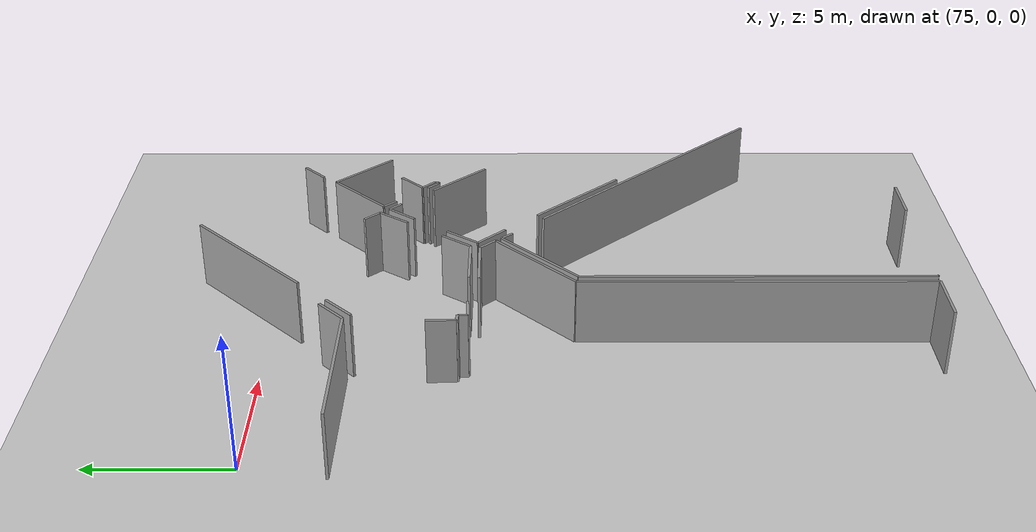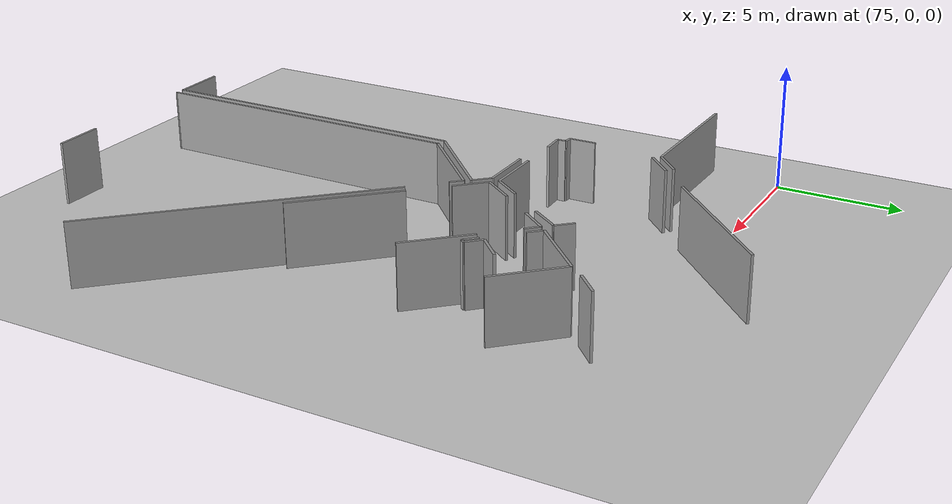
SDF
<sdf version="1.6">
 <world name="default">
  <model name="ground_plane">
   <static>1</static>
   <link name="link">
    <collision name="collision">
     <geometry><plane><normal>0 0 1</normal><size>100 100</size></plane></geometry>
     <surface><friction><ode><mu>100</mu><mu2>50</mu2></ode></friction></surface>
    </collision>
    <visual name="visual">
     <cast_shadows>0</cast_shadows>
     <geometry><plane><normal>0 0 1</normal><size>100 100</size></plane></geometry>
     <material>
      <script><uri>file://media/materials/scripts/gazebo.material</uri><name>Gazebo/Grey</name></script>
     </material>
    </visual>
   </link>
  </model>
  <model name="0510035343_A_40_1_102">
   <static>1</static>
   <link name="Wall_567">
    <collision name="Wall_567_Collision">
     <geometry><box><size>0.35316893586 0.1 2.5</size></box></geometry>
     <pose>0.17658446793 0 1.25 0 0 0</pose>
    </collision>
    <visual name="Wall_567_Visual">
     <pose>0.17658446793 0 1.25 0 0 0</pose>
     <geometry><box><size>0.35316893586 0.1 2.5</size></box></geometry>
     <material>
      <script><uri>file://media/materials/scripts/gazebo.material</uri><name>Gazebo/Grey</name></script>
      <ambient>1 1 1 1</ambient>
     </material>
    </visual>
    <pose>197.060649338 -31.5341013679 0 0 0 1.57079632679</pose>
   </link>
   <link name="Wall_568">
    <collision name="Wall_568_Collision">
     <geometry><box><size>0.316388085102 0.1 2.5</size></box></geometry>
     <pose>0.158194042551 0 1.25 0 0 0</pose>
    </collision>
    <visual name="Wall_568_Visual">
     <pose>0.158194042551 0 1.25 0 0 0</pose>
     <geometry><box><size>0.316388085102 0.1 2.5</size></box></geometry>
     <material>
      <script><uri>file://media/materials/scripts/gazebo.material</uri><name>Gazebo/Grey</name></script>
      <ambient>1 1 1 1</ambient>
     </material>
    </visual>
    <pose>197.060649338 -31.180932432 0 0 0 3.05078745979</pose>
   </link>
   <link name="Wall_569">
    <collision name="Wall_569_Collision">
     <geometry><box><size>1.05967791327 0.1 2.5</size></box></geometry>
     <pose>0.529838956633 0 1.25 0 0 0</pose>
    </collision>
    <visual name="Wall_569_Visual">
     <pose>0.529838956633 0 1.25 0 0 0</pose>
     <geometry><box><size>1.05967791327 0.1 2.5</size></box></geometry>
     <material>
      <script><uri>file://media/materials/scripts/gazebo.material</uri><name>Gazebo/Grey</name></script>
      <ambient>1 1 1 1</ambient>
     </material>
    </visual>
    <pose>196.745564759 -31.1522422165 0 0 0 1.58876707353</pose>
   </link>
   <link name="Wall_572">
    <collision name="Wall_572_Collision">
     <geometry><box><size>1.38983380276 0.1 2.5</size></box></geometry>
     <pose>0.694916901379 0 1.25 0 0 0</pose>
    </collision>
    <visual name="Wall_572_Visual">
     <pose>0.694916901379 0 1.25 0 0 0</pose>
     <geometry><box><size>1.38983380276 0.1 2.5</size></box></geometry>
     <material>
      <script><uri>file://media/materials/scripts/gazebo.material</uri><name>Gazebo/Grey</name></script>
      <ambient>1 1 1 1</ambient>
     </material>
    </visual>
    <pose>197.075121394 -27.5751055254 0 0 0 0.766020744107</pose>
   </link>
   <link name="Wall_573">
    <collision name="Wall_573_Collision">
     <geometry><box><size>5.97496874762 0.1 2.5</size></box></geometry>
     <pose>2.98748437381 0 1.25 0 0 0</pose>
    </collision>
    <visual name="Wall_573_Visual">
     <pose>2.98748437381 0 1.25 0 0 0</pose>
     <geometry><box><size>5.97496874762 0.1 2.5</size></box></geometry>
     <material>
      <script><uri>file://media/materials/scripts/gazebo.material</uri><name>Gazebo/Grey</name></script>
      <ambient>1 1 1 1</ambient>
     </material>
    </visual>
    <pose>199.208353169 -25.5236281697 0 0 0 0.768210290108</pose>
   </link>
   <link name="Wall_588">
    <collision name="Wall_588_Collision">
     <geometry><box><size>0.770288962461 0.1 2.5</size></box></geometry>
     <pose>0.385144481231 0 1.25 0 0 0</pose>
    </collision>
    <visual name="Wall_588_Visual">
     <pose>0.385144481231 0 1.25 0 0 0</pose>
     <geometry><box><size>0.770288962461 0.1 2.5</size></box></geometry>
     <material>
      <script><uri>file://media/materials/scripts/gazebo.material</uri><name>Gazebo/Grey</name></script>
      <ambient>1 1 1 1</ambient>
     </material>
    </visual>
    <pose>203.94198483 -27.4583134977 0 0 0 -0.819899392911</pose>
   </link>
   <link name="Wall_589">
    <collision name="Wall_589_Collision">
     <geometry><box><size>1.33744802744 0.1 2.5</size></box></geometry>
     <pose>0.668724013718 0 1.25 0 0 0</pose>
    </collision>
    <visual name="Wall_589_Visual">
     <pose>0.668724013718 0 1.25 0 0 0</pose>
     <geometry><box><size>1.33744802744 0.1 2.5</size></box></geometry>
     <material>
      <script><uri>file://media/materials/scripts/gazebo.material</uri><name>Gazebo/Grey</name></script>
      <ambient>1 1 1 1</ambient>
     </material>
    </visual>
    <pose>204.467548954 -28.0214541877 0 0 0 -2.20351454487</pose>
   </link>
   <link name="Wall_590">
    <collision name="Wall_590_Collision">
     <geometry><box><size>1.33063933046 0.1 2.5</size></box></geometry>
     <pose>0.665319665229 0 1.25 0 0 0</pose>
    </collision>
    <visual name="Wall_590_Visual">
     <pose>0.665319665229 0 1.25 0 0 0</pose>
     <geometry><box><size>1.33063933046 0.1 2.5</size></box></geometry>
     <material>
      <script><uri>file://media/materials/scripts/gazebo.material</uri><name>Gazebo/Grey</name></script>
      <ambient>1 1 1 1</ambient>
     </material>
    </visual>
    <pose>202.644323844 -30.4362563077 0 0 0 -2.2084586987</pose>
   </link>
   <link name="Wall_591">
    <collision name="Wall_591_Collision">
     <geometry><box><size>2.27187932034 0.1 2.5</size></box></geometry>
     <pose>1.13593966017 0 1.25 0 0 0</pose>
    </collision>
    <visual name="Wall_591_Visual">
     <pose>1.13593966017 0 1.25 0 0 0</pose>
     <geometry><box><size>2.27187932034 0.1 2.5</size></box></geometry>
     <material>
      <script><uri>file://media/materials/scripts/gazebo.material</uri><name>Gazebo/Grey</name></script>
      <ambient>1 1 1 1</ambient>
     </material>
    </visual>
    <pose>201.852169221 -31.5054111524 0 0 0 3.13734592007</pose>
   </link>
   <link name="Wall_592">
    <collision name="Wall_592_Collision">
     <geometry><box><size>0.882612855713 0.1 2.5</size></box></geometry>
     <pose>0.441306427857 0 1.25 0 0 0</pose>
    </collision>
    <visual name="Wall_592_Visual">
     <pose>0.441306427857 0 1.25 0 0 0</pose>
     <geometry><box><size>0.882612855713 0.1 2.5</size></box></geometry>
     <material>
      <script><uri>file://media/materials/scripts/gazebo.material</uri><name>Gazebo/Grey</name></script>
      <ambient>1 1 1 1</ambient>
     </material>
    </visual>
    <pose>197.942429147 -31.4957631153 0 0 0 -3.0981417582</pose>
   </link>
   <link name="Wall_599">
    <collision name="Wall_599_Collision">
     <geometry><box><size>2.16547653052 0.1 2.5</size></box></geometry>
     <pose>1.08273826526 0 1.25 0 0 0</pose>
    </collision>
    <visual name="Wall_599_Visual">
     <pose>1.08273826526 0 1.25 0 0 0</pose>
     <geometry><box><size>2.16547653052 0.1 2.5</size></box></geometry>
     <material>
      <script><uri>file://media/materials/scripts/gazebo.material</uri><name>Gazebo/Grey</name></script>
      <ambient>1 1 1 1</ambient>
     </material>
    </visual>
    <pose>199.567361706 -31.8489320512 0 0 0 0.0</pose>
   </link>
   <link name="Wall_600">
    <collision name="Wall_600_Collision">
     <geometry><box><size>0.778689498855 0.1 2.5</size></box></geometry>
     <pose>0.389344749427 0 1.25 0 0 0</pose>
    </collision>
    <visual name="Wall_600_Visual">
     <pose>0.389344749427 0 1.25 0 0 0</pose>
     <geometry><box><size>0.778689498855 0.1 2.5</size></box></geometry>
     <material>
      <script><uri>file://media/materials/scripts/gazebo.material</uri><name>Gazebo/Grey</name></script>
      <ambient>1 1 1 1</ambient>
     </material>
    </visual>
    <pose>201.732838237 -31.8489320512 0 0 0 -0.810300763502</pose>
   </link>
   <link name="Wall_601">
    <collision name="Wall_601_Collision">
     <geometry><box><size>4.13255327687 0.1 2.5</size></box></geometry>
     <pose>2.06627663843 0 1.25 0 0 0</pose>
    </collision>
    <visual name="Wall_601_Visual">
     <pose>2.06627663843 0 1.25 0 0 0</pose>
     <geometry><box><size>4.13255327687 0.1 2.5</size></box></geometry>
     <material>
      <script><uri>file://media/materials/scripts/gazebo.material</uri><name>Gazebo/Grey</name></script>
      <ambient>1 1 1 1</ambient>
     </material>
    </visual>
    <pose>202.269573773 -32.413088324 0 0 0 -2.37609279345</pose>
   </link>
   <link name="Wall_602">
    <collision name="Wall_602_Collision">
     <geometry><box><size>12.7734932876 0.1 2.5</size></box></geometry>
     <pose>6.38674664382 0 1.25 0 0 0</pose>
    </collision>
    <visual name="Wall_602_Visual">
     <pose>6.38674664382 0 1.25 0 0 0</pose>
     <geometry><box><size>12.7734932876 0.1 2.5</size></box></geometry>
     <material>
      <script><uri>file://media/materials/scripts/gazebo.material</uri><name>Gazebo/Grey</name></script>
      <ambient>1 1 1 1</ambient>
     </material>
    </visual>
    <pose>199.289853693 -35.2765241677 0 0 0 -1.57079632679</pose>
   </link>
   <link name="Wall_603">
    <collision name="Wall_603_Collision">
     <geometry><box><size>2.10809609953 0.1 2.5</size></box></geometry>
     <pose>1.05404804976 0 1.25 0 0 0</pose>
    </collision>
    <visual name="Wall_603_Visual">
     <pose>1.05404804976 0 1.25 0 0 0</pose>
     <geometry><box><size>2.10809609953 0.1 2.5</size></box></geometry>
     <material>
      <script><uri>file://media/materials/scripts/gazebo.material</uri><name>Gazebo/Grey</name></script>
      <ambient>1 1 1 1</ambient>
     </material>
    </visual>
    <pose>199.289853693 -48.0500174553 0 0 0 3.14159265359</pose>
   </link>
   <link name="Wall_611">
    <collision name="Wall_611_Collision">
     <geometry><box><size>1.29021769721 0.1 2.5</size></box></geometry>
     <pose>0.645108848606 0 1.25 0 0 0</pose>
    </collision>
    <visual name="Wall_611_Visual">
     <pose>0.645108848606 0 1.25 0 0 0</pose>
     <geometry><box><size>1.29021769721 0.1 2.5</size></box></geometry>
     <material>
      <script><uri>file://media/materials/scripts/gazebo.material</uri><name>Gazebo/Grey</name></script>
      <ambient>1 1 1 1</ambient>
     </material>
    </visual>
    <pose>197.81141896 -26.4203878257 0 0 0 -2.38778637048</pose>
   </link>
   <link name="Wall_612">
    <collision name="Wall_612_Collision">
     <geometry><box><size>5.55970458364 0.1 2.5</size></box></geometry>
     <pose>2.77985229182 0 1.25 0 0 0</pose>
    </collision>
    <visual name="Wall_612_Visual">
     <pose>2.77985229182 0 1.25 0 0 0</pose>
     <geometry><box><size>5.55970458364 0.1 2.5</size></box></geometry>
     <material>
      <script><uri>file://media/materials/scripts/gazebo.material</uri><name>Gazebo/Grey</name></script>
      <ambient>1 1 1 1</ambient>
     </material>
    </visual>
    <pose>196.870735345 -27.3034371132 0 0 0 3.12953624107</pose>
   </link>
   <link name="Wall_652">
    <collision name="Wall_652_Collision">
     <geometry><box><size>1.17896921696 0.1 2.5</size></box></geometry>
     <pose>0.589484608479 0 1.25 0 0 0</pose>
    </collision>
    <visual name="Wall_652_Visual">
     <pose>0.589484608479 0 1.25 0 0 0</pose>
     <geometry><box><size>1.17896921696 0.1 2.5</size></box></geometry>
     <material>
      <script><uri>file://media/materials/scripts/gazebo.material</uri><name>Gazebo/Grey</name></script>
      <ambient>1 1 1 1</ambient>
     </material>
    </visual>
    <pose>207.478752103 -25.5680599194 0 0 0 0.755547191539</pose>
   </link>
   <link name="Wall_662">
    <collision name="Wall_662_Collision">
     <geometry><box><size>4.34673030655 0.1 2.5</size></box></geometry>
     <pose>2.17336515327 0 1.25 0 0 0</pose>
    </collision>
    <visual name="Wall_662_Visual">
     <pose>2.17336515327 0 1.25 0 0 0</pose>
     <geometry><box><size>4.34673030655 0.1 2.5</size></box></geometry>
     <material>
      <script><uri>file://media/materials/scripts/gazebo.material</uri><name>Gazebo/Grey</name></script>
      <ambient>1 1 1 1</ambient>
     </material>
    </visual>
    <pose>207.237551176 -37.1330096163 0 0 0 2.33124511527</pose>
   </link>
   <link name="Wall_663">
    <collision name="Wall_663_Collision">
     <geometry><box><size>1.397198509 0.1 2.5</size></box></geometry>
     <pose>0.698599254498 0 1.25 0 0 0</pose>
    </collision>
    <visual name="Wall_663_Visual">
     <pose>0.698599254498 0 1.25 0 0 0</pose>
     <geometry><box><size>1.397198509 0.1 2.5</size></box></geometry>
     <material>
      <script><uri>file://media/materials/scripts/gazebo.material</uri><name>Gazebo/Grey</name></script>
      <ambient>1 1 1 1</ambient>
     </material>
    </visual>
    <pose>203.083817322 -32.7662572598 0 0 0 2.34514379638</pose>
   </link>
   <link name="Wall_664">
    <collision name="Wall_664_Collision">
     <geometry><box><size>1.45127431016 0.1 2.5</size></box></geometry>
     <pose>0.725637155081 0 1.25 0 0 0</pose>
    </collision>
    <visual name="Wall_664_Visual">
     <pose>0.725637155081 0 1.25 0 0 0</pose>
     <geometry><box><size>1.45127431016 0.1 2.5</size></box></geometry>
     <material>
      <script><uri>file://media/materials/scripts/gazebo.material</uri><name>Gazebo/Grey</name></script>
      <ambient>1 1 1 1</ambient>
     </material>
    </visual>
    <pose>202.106826621 -31.7674315275 0 0 0 0.930269317</pose>
   </link>
   <link name="Wall_665">
    <collision name="Wall_665_Collision">
     <geometry><box><size>1.26469583047 0.1 2.5</size></box></geometry>
     <pose>0.632347915236 0 1.25 0 0 0</pose>
    </collision>
    <visual name="Wall_665_Visual">
     <pose>0.632347915236 0 1.25 0 0 0</pose>
     <geometry><box><size>1.26469583047 0.1 2.5</size></box></geometry>
     <material>
      <script><uri>file://media/materials/scripts/gazebo.material</uri><name>Gazebo/Grey</name></script>
      <ambient>1 1 1 1</ambient>
     </material>
    </visual>
    <pose>203.962296487 -29.3414579961 0 0 0 0.896494324816</pose>
   </link>
   <link name="Wall_666">
    <collision name="Wall_666_Collision">
     <geometry><box><size>0.60627770918 0.1 2.5</size></box></geometry>
     <pose>0.30313885459 0 1.25 0 0 0</pose>
    </collision>
    <visual name="Wall_666_Visual">
     <pose>0.30313885459 0 1.25 0 0 0</pose>
     <geometry><box><size>0.60627770918 0.1 2.5</size></box></geometry>
     <material>
      <script><uri>file://media/materials/scripts/gazebo.material</uri><name>Gazebo/Grey</name></script>
      <ambient>1 1 1 1</ambient>
     </material>
    </visual>
    <pose>204.751912152 -28.3535497794 0 0 0 -0.784509801179</pose>
   </link>
   <link name="Wall_667">
    <collision name="Wall_667_Collision">
     <geometry><box><size>2.73534332112 0.1 2.5</size></box></geometry>
     <pose>1.36767166056 0 1.25 0 0 0</pose>
    </collision>
    <visual name="Wall_667_Visual">
     <pose>1.36767166056 0 1.25 0 0 0</pose>
     <geometry><box><size>2.73534332112 0.1 2.5</size></box></geometry>
     <material>
      <script><uri>file://media/materials/scripts/gazebo.material</uri><name>Gazebo/Grey</name></script>
      <ambient>1 1 1 1</ambient>
     </material>
    </visual>
    <pose>206.313370783 -29.9475070615 0 0 0 -0.811063854557</pose>
   </link>
   <link name="Wall_679">
    <collision name="Wall_679_Collision">
     <geometry><box><size>0.600041250592 0.1 2.5</size></box></geometry>
     <pose>0.300020625296 0 1.25 0 0 0</pose>
    </collision>
    <visual name="Wall_679_Visual">
     <pose>0.300020625296 0 1.25 0 0 0</pose>
     <geometry><box><size>0.600041250592 0.1 2.5</size></box></geometry>
     <material>
      <script><uri>file://media/materials/scripts/gazebo.material</uri><name>Gazebo/Grey</name></script>
      <ambient>1 1 1 1</ambient>
     </material>
    </visual>
    <pose>206.958265892 -30.1595099813 0 0 0 2.34362782679</pose>
   </link>
   <link name="Wall_680">
    <collision name="Wall_680_Collision">
     <geometry><box><size>0.616381193804 0.1 2.5</size></box></geometry>
     <pose>0.308190596902 0 1.25 0 0 0</pose>
    </collision>
    <visual name="Wall_680_Visual">
     <pose>0.308190596902 0 1.25 0 0 0</pose>
     <geometry><box><size>0.616381193804 0.1 2.5</size></box></geometry>
     <material>
      <script><uri>file://media/materials/scripts/gazebo.material</uri><name>Gazebo/Grey</name></script>
      <ambient>1 1 1 1</ambient>
     </material>
    </visual>
    <pose>205.399346219 -28.5703767178 0 0 0 2.31249055837</pose>
   </link>
   <link name="Wall_681">
    <collision name="Wall_681_Collision">
     <geometry><box><size>2.88731183079 0.1 2.5</size></box></geometry>
     <pose>1.4436559154 0 1.25 0 0 0</pose>
    </collision>
    <visual name="Wall_681_Visual">
     <pose>1.4436559154 0 1.25 0 0 0</pose>
     <geometry><box><size>2.88731183079 0.1 2.5</size></box></geometry>
     <material>
      <script><uri>file://media/materials/scripts/gazebo.material</uri><name>Gazebo/Grey</name></script>
      <ambient>1 1 1 1</ambient>
     </material>
    </visual>
    <pose>204.98295725 -28.1159033927 0 0 0 0.771780449166</pose>
   </link>
   <link name="Wall_682">
    <collision name="Wall_682_Collision">
     <geometry><box><size>2.85352689656 0.1 2.5</size></box></geometry>
     <pose>1.42676344828 0 1.25 0 0 0</pose>
    </collision>
    <visual name="Wall_682_Visual">
     <pose>1.42676344828 0 1.25 0 0 0</pose>
     <geometry><box><size>2.85352689656 0.1 2.5</size></box></geometry>
     <material>
      <script><uri>file://media/materials/scripts/gazebo.material</uri><name>Gazebo/Grey</name></script>
      <ambient>1 1 1 1</ambient>
     </material>
    </visual>
    <pose>207.052207306 -26.1022564981 0 0 0 -0.808679041371</pose>
   </link>
   <link name="Wall_685">
    <collision name="Wall_685_Collision">
     <geometry><box><size>1.20941740149 0.1 2.5</size></box></geometry>
     <pose>0.604708700746 0 1.25 0 0 0</pose>
    </collision>
    <visual name="Wall_685_Visual">
     <pose>0.604708700746 0 1.25 0 0 0</pose>
     <geometry><box><size>1.20941740149 0.1 2.5</size></box></geometry>
     <material>
      <script><uri>file://media/materials/scripts/gazebo.material</uri><name>Gazebo/Grey</name></script>
      <ambient>1 1 1 1</ambient>
     </material>
    </visual>
    <pose>207.435589831 -28.6714272113 0 0 0 -2.36866415263</pose>
   </link>
   <link name="Wall_686">
    <collision name="Wall_686_Collision">
     <geometry><box><size>0.698932471226 0.1 2.5</size></box></geometry>
     <pose>0.349466235613 0 1.25 0 0 0</pose>
    </collision>
    <visual name="Wall_686_Visual">
     <pose>0.349466235613 0 1.25 0 0 0</pose>
     <geometry><box><size>0.698932471226 0.1 2.5</size></box></geometry>
     <material>
      <script><uri>file://media/materials/scripts/gazebo.material</uri><name>Gazebo/Grey</name></script>
      <ambient>1 1 1 1</ambient>
     </material>
    </visual>
    <pose>206.569805452 -29.5158843505 0 0 0 -0.778462749295</pose>
   </link>
   <link name="Wall_687">
    <collision name="Wall_687_Collision">
     <geometry><box><size>0.187832041122 0.1 2.5</size></box></geometry>
     <pose>0.0939160205612 0 1.25 0 0 0</pose>
    </collision>
    <visual name="Wall_687_Visual">
     <pose>0.0939160205612 0 1.25 0 0 0</pose>
     <geometry><box><size>0.187832041122 0.1 2.5</size></box></geometry>
     <material>
      <script><uri>file://media/materials/scripts/gazebo.material</uri><name>Gazebo/Grey</name></script>
      <ambient>1 1 1 1</ambient>
     </material>
    </visual>
    <pose>207.067441049 -30.0066647624 0 0 0 -2.19104581278</pose>
   </link>
   <link name="Wall_688">
    <collision name="Wall_688_Collision">
     <geometry><box><size>12.7112888381 0.1 2.5</size></box></geometry>
     <pose>6.35564441905 0 1.25 0 0 0</pose>
    </collision>
    <visual name="Wall_688_Visual">
     <pose>6.35564441905 0 1.25 0 0 0</pose>
     <geometry><box><size>12.7112888381 0.1 2.5</size></box></geometry>
     <material>
      <script><uri>file://media/materials/scripts/gazebo.material</uri><name>Gazebo/Grey</name></script>
      <ambient>1 1 1 1</ambient>
     </material>
    </visual>
    <pose>199.64708496 -48.0708369037 0 0 0 1.57079632679</pose>
   </link>
   <link name="Wall_689">
    <collision name="Wall_689_Collision">
     <geometry><box><size>3.90984138227 0.1 2.5</size></box></geometry>
     <pose>1.95492069114 0 1.25 0 0 0</pose>
    </collision>
    <visual name="Wall_689_Visual">
     <pose>1.95492069114 0 1.25 0 0 0</pose>
     <geometry><box><size>3.90984138227 0.1 2.5</size></box></geometry>
     <material>
      <script><uri>file://media/materials/scripts/gazebo.material</uri><name>Gazebo/Grey</name></script>
      <ambient>1 1 1 1</ambient>
     </material>
    </visual>
    <pose>199.64708496 -35.3595480656 0 0 0 0.771714226972</pose>
   </link>
   <link name="Wall_690">
    <collision name="Wall_690_Collision">
     <geometry><box><size>0.536732473268 0.1 2.5</size></box></geometry>
     <pose>0.268366236634 0 1.25 0 0 0</pose>
    </collision>
    <visual name="Wall_690_Visual">
     <pose>0.268366236634 0 1.25 0 0 0</pose>
     <geometry><box><size>0.536732473268 0.1 2.5</size></box></geometry>
     <material>
      <script><uri>file://media/materials/scripts/gazebo.material</uri><name>Gazebo/Grey</name></script>
      <ambient>1 1 1 1</ambient>
     </material>
    </visual>
    <pose>202.449331937 -32.6329620109 0 0 0 -0.852010826995</pose>
   </link>
   <link name="Wall_691">
    <collision name="Wall_691_Collision">
     <geometry><box><size>11.7592122355 0.1 2.5</size></box></geometry>
     <pose>5.87960611777 0 1.25 0 0 0</pose>
    </collision>
    <visual name="Wall_691_Visual">
     <pose>5.87960611777 0 1.25 0 0 0</pose>
     <geometry><box><size>11.7592122355 0.1 2.5</size></box></geometry>
     <material>
      <script><uri>file://media/materials/scripts/gazebo.material</uri><name>Gazebo/Grey</name></script>
      <ambient>1 1 1 1</ambient>
     </material>
    </visual>
    <pose>203.962296487 -34.1875654575 0 0 0 -0.807140506626</pose>
   </link>
   <link name="Wall_694">
    <collision name="Wall_694_Collision">
     <geometry><box><size>1.90421784252 0.1 2.5</size></box></geometry>
     <pose>0.952108921261 0 1.25 0 0 0</pose>
    </collision>
    <visual name="Wall_694_Visual">
     <pose>0.952108921261 0 1.25 0 0 0</pose>
     <geometry><box><size>1.90421784252 0.1 2.5</size></box></geometry>
     <material>
      <script><uri>file://media/materials/scripts/gazebo.material</uri><name>Gazebo/Grey</name></script>
      <ambient>1 1 1 1</ambient>
     </material>
    </visual>
    <pose>206.541876924 -48.0299596941 0 0 0 3.14159265359</pose>
   </link>
   <link name="Wall_695">
    <collision name="Wall_695_Collision">
     <geometry><box><size>0.063813241403 0.1 2.5</size></box></geometry>
     <pose>0.0319066207015 0 1.25 0 0 0</pose>
    </collision>
    <visual name="Wall_695_Visual">
     <pose>0.0319066207015 0 1.25 0 0 0</pose>
     <geometry><box><size>0.063813241403 0.1 2.5</size></box></geometry>
     <material>
      <script><uri>file://media/materials/scripts/gazebo.material</uri><name>Gazebo/Grey</name></script>
      <ambient>1 1 1 1</ambient>
     </material>
    </visual>
    <pose>199.696086832 -48.0299596941 0 0 0 -2.44634495309</pose>
   </link>
   <pose>-116.8 24.3141911835 0 0 0 0</pose>
  </model>
 </world>
</sdf>
